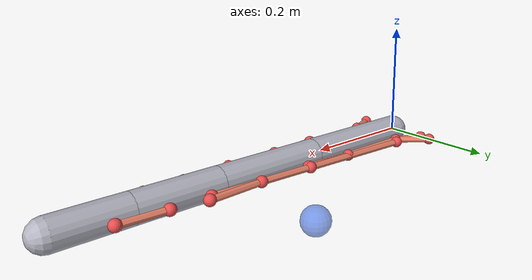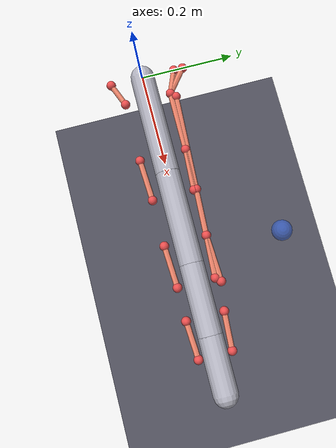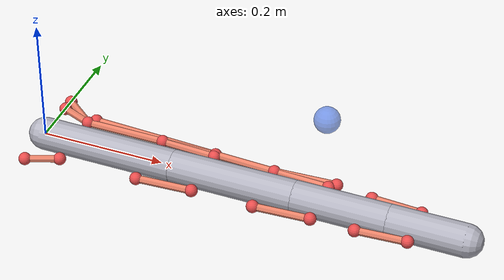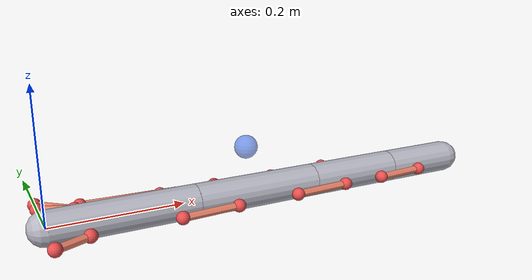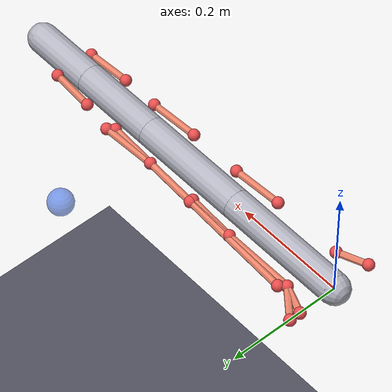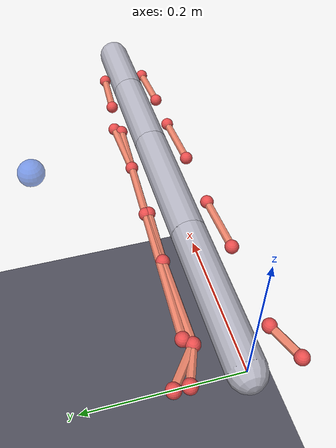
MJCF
<mujoco model="arm4_muscle">
  <!-- 4-joint arm, 10 Hill muscles (8 monoarticular + 2 biarticular). Extends the DoF axis
       (arm1..arm4) to characterise how the frozen>co-learned advantage scales with DoF. -->
  <compiler angle="radian" autolimits="true"/>
  <option timestep="0.002" integrator="implicitfast"/>
  <default>
    <joint type="hinge" axis="0 0 1" damping="0.25" limited="true"/>
    <geom type="capsule" size="0.026" rgba="0.7 0.7 0.75 1" density="800"/>
    <site size="0.010" rgba="0.9 0.3 0.3 1"/>
    <muscle ctrllimited="true" ctrlrange="0 1"/>
    <tendon width="0.006" rgba="0.9 0.5 0.4 1"/>
  </default>
  <worldbody>
    <light pos="0 0 2"/>
    <geom name="floor" type="plane" pos="0 0 -1" size="2 2 0.1" rgba="0.3 0.3 0.35 1"/>
    <site name="w_up"   pos="0 0.07 0"/>
    <site name="w_down" pos="0 -0.07 0"/>
    <site name="w_bi1"  pos="0 0.09 0"/>
    <body name="upper" pos="0 0 0">
      <joint name="shoulder" range="-2.0 2.0"/>
      <geom fromto="0 0 0 0.22 0 0"/>
      <site name="u_up"   pos="0.05 0.05 0"/><site name="u_down" pos="0.05 -0.05 0"/>
      <site name="ue_up"  pos="0.18 0.05 0"/><site name="ue_down" pos="0.18 -0.05 0"/>
      <site name="u_bi2"  pos="0.06 0.06 0"/>
      <body name="fore" pos="0.22 0 0">
        <joint name="elbow" range="-2.5 0.2"/>
        <geom fromto="0 0 0 0.20 0 0"/>
        <site name="f_up"   pos="0.05 0.045 0"/><site name="f_down" pos="0.05 -0.045 0"/>
        <site name="fw_up"  pos="0.15 0.045 0"/><site name="fw_down" pos="0.15 -0.045 0"/>
        <site name="f_bi1"  pos="0.05 0.05 0"/>
        <body name="hand" pos="0.20 0 0">
          <joint name="wrist" range="-1.6 1.6"/>
          <geom fromto="0 0 0 0.15 0 0"/>
          <site name="h_up"   pos="0.04 0.04 0"/><site name="h_down" pos="0.04 -0.04 0"/>
          <site name="hg_up"  pos="0.11 0.04 0"/><site name="hg_down" pos="0.11 -0.04 0"/>
          <site name="h_bi2"  pos="0.05 0.05 0"/>
          <body name="hand2" pos="0.15 0 0">
            <joint name="wrist2" range="-1.6 1.6"/>
            <geom fromto="0 0 0 0.12 0 0"/>
            <site name="g_up"   pos="0.04 0.035 0"/><site name="g_down" pos="0.04 -0.035 0"/>
            <site name="tip" pos="0.12 0 0" size="0.018" rgba="0.2 0.8 0.3 1"/>
          </body>
        </body>
      </body>
    </body>
    <body name="target" mocap="true" pos="0.4 0.2 0">
      <site name="target_site" pos="0 0 0" size="0.022" rgba="0.2 0.4 0.9 0.6"/>
    </body>
  </worldbody>
  <tendon>
    <spatial name="t_sh_flex"><site site="w_up"/><site site="u_up"/></spatial>
    <spatial name="t_sh_ext"> <site site="w_down"/><site site="u_down"/></spatial>
    <spatial name="t_el_flex"><site site="ue_up"/><site site="f_up"/></spatial>
    <spatial name="t_el_ext"> <site site="ue_down"/><site site="f_down"/></spatial>
    <spatial name="t_wr_flex"><site site="fw_up"/><site site="h_up"/></spatial>
    <spatial name="t_wr_ext"> <site site="fw_down"/><site site="h_down"/></spatial>
    <spatial name="t_w2_flex"><site site="hg_up"/><site site="g_up"/></spatial>
    <spatial name="t_w2_ext"> <site site="hg_down"/><site site="g_down"/></spatial>
    <spatial name="t_bi1"><site site="w_bi1"/><site site="u_up"/><site site="f_bi1"/></spatial>
    <spatial name="t_bi2"><site site="u_bi2"/><site site="fw_up"/><site site="h_bi2"/></spatial>
  </tendon>
  <actuator>
    <muscle name="sh_flex" tendon="t_sh_flex"/><muscle name="sh_ext" tendon="t_sh_ext"/>
    <muscle name="el_flex" tendon="t_el_flex"/><muscle name="el_ext" tendon="t_el_ext"/>
    <muscle name="wr_flex" tendon="t_wr_flex"/><muscle name="wr_ext" tendon="t_wr_ext"/>
    <muscle name="w2_flex" tendon="t_w2_flex"/><muscle name="w2_ext" tendon="t_w2_ext"/>
    <muscle name="bi_shel" tendon="t_bi1"/><muscle name="bi_elwr" tendon="t_bi2"/>
  </actuator>
</mujoco>
